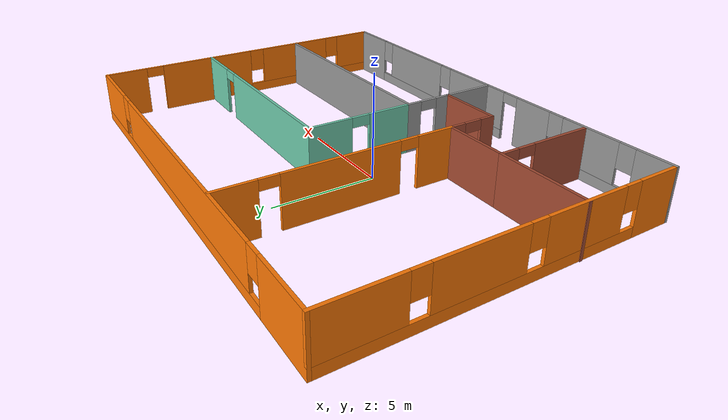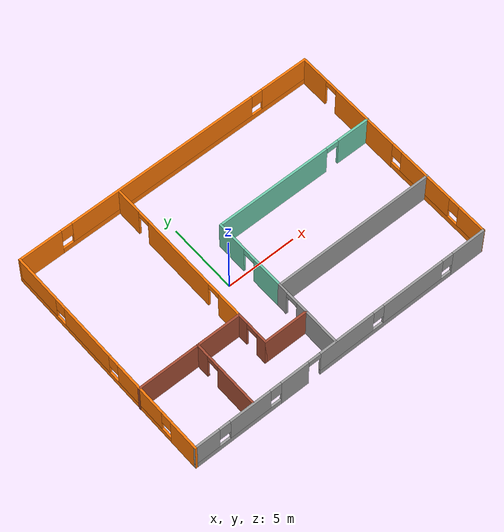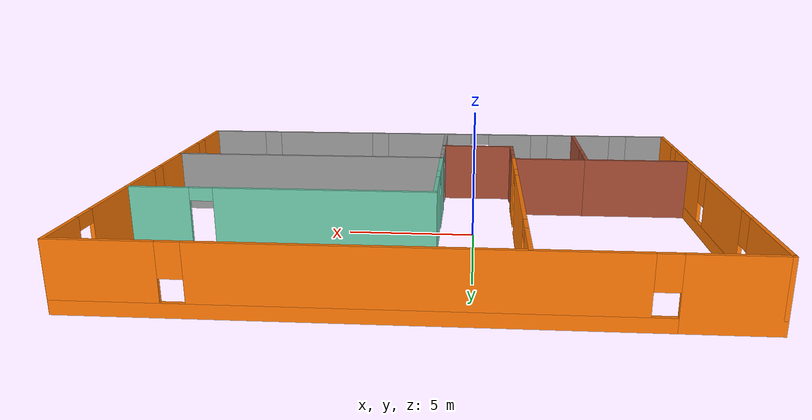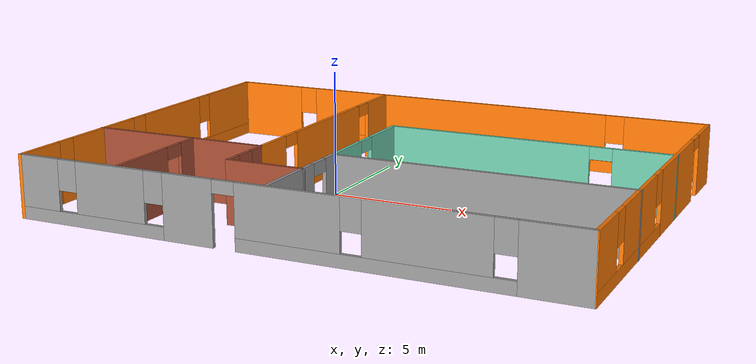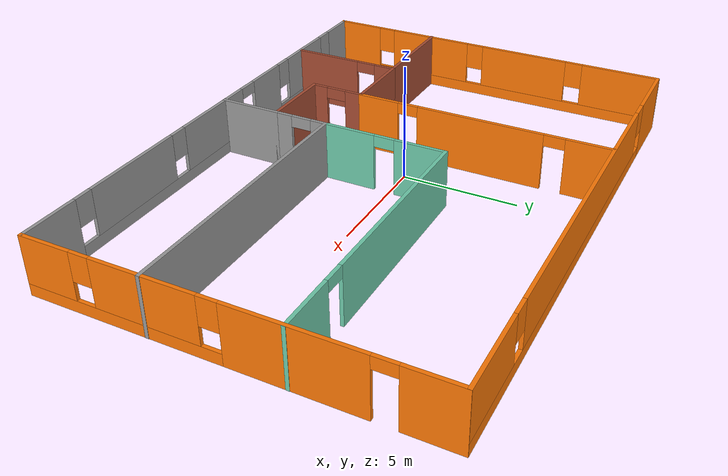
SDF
<?xml version='1.0'?>
<sdf version='1.6'>
  <model name='my_office'>
    <pose frame=''>1.93379 0.156321 0 0 -0 0</pose>
    <link name='Wall_10'>
      <collision name='Wall_10_Collision'>
        <geometry>
          <box>
            <size>4.5 0.15 2.5</size>
          </box>
        </geometry>
        <pose frame=''>0 0 1.25 0 -0 0</pose>
      </collision>
      <visual name='Wall_10_Visual'>
        <pose frame=''>0 0 1.25 0 -0 0</pose>
        <geometry>
          <box>
            <size>4.5 0.15 2.5</size>
          </box>
        </geometry>
        <material>
          <script>
            <uri>file://media/materials/scripts/gazebo.material</uri>
            <name>Gazebo/Bricks</name>
          </script>
          <ambient>1 1 1 1</ambient>
        </material>
        <meta>
          <layer>0</layer>
        </meta>
      </visual>
      <pose frame=''>-8.9 -3.09004 0 0 -0 0</pose>
    </link>
    <link name='Wall_11'>
      <pose frame=''>-6.725 -5.51504 0 0 0 -1.5708</pose>
      <visual name='Wall_11_Visual_0'>
        <pose frame=''>-1.99975 0 1.25 0 -0 0</pose>
        <geometry>
          <box>
            <size>1.00049 0.15 2.5</size>
          </box>
        </geometry>
        <material>
          <script>
            <uri>file://media/materials/scripts/gazebo.material</uri>
            <name>Gazebo/Bricks</name>
          </script>
          <ambient>1 1 1 1</ambient>
        </material>
        <meta>
          <layer>0</layer>
        </meta>
      </visual>
      <collision name='Wall_11_Collision_0'>
        <geometry>
          <box>
            <size>1.00049 0.15 2.5</size>
          </box>
        </geometry>
        <pose frame=''>-1.99975 0 1.25 0 -0 0</pose>
      </collision>
      <visual name='Wall_11_Visual_1'>
        <pose frame=''>0.950245 0 1.25 0 -0 0</pose>
        <geometry>
          <box>
            <size>3.09951 0.15 2.5</size>
          </box>
        </geometry>
        <material>
          <script>
            <uri>file://media/materials/scripts/gazebo.material</uri>
            <name>Gazebo/Bricks</name>
          </script>
          <ambient>1 1 1 1</ambient>
        </material>
        <meta>
          <layer>0</layer>
        </meta>
      </visual>
      <collision name='Wall_11_Collision_1'>
        <geometry>
          <box>
            <size>3.09951 0.15 2.5</size>
          </box>
        </geometry>
        <pose frame=''>0.950245 0 1.25 0 -0 0</pose>
      </collision>
      <visual name='Wall_11_Visual_2'>
        <pose frame=''>-1.04951 0 2.25 0 -0 0</pose>
        <geometry>
          <box>
            <size>0.9 0.15 0.5</size>
          </box>
        </geometry>
        <material>
          <script>
            <uri>file://media/materials/scripts/gazebo.material</uri>
            <name>Gazebo/Bricks</name>
          </script>
          <ambient>1 1 1 1</ambient>
        </material>
        <meta>
          <layer>0</layer>
        </meta>
      </visual>
      <collision name='Wall_11_Collision_2'>
        <geometry>
          <box>
            <size>0.9 0.15 0.5</size>
          </box>
        </geometry>
        <pose frame=''>-1.04951 0 2.25 0 -0 0</pose>
      </collision>
    </link>
    <link name='Wall_13'>
      <collision name='Wall_13_Collision'>
        <geometry>
          <box>
            <size>3.25 0.15 2.5</size>
          </box>
        </geometry>
        <pose frame=''>0 0 1.25 0 -0 0</pose>
      </collision>
      <visual name='Wall_13_Visual'>
        <pose frame=''>0 0 1.25 0 -0 0</pose>
        <geometry>
          <box>
            <size>3.25 0.15 2.5</size>
          </box>
        </geometry>
        <material>
          <script>
            <uri>file://media/materials/scripts/gazebo.material</uri>
            <name>Gazebo/Bricks</name>
          </script>
          <ambient>1 1 1 1</ambient>
        </material>
        <meta>
          <layer>0</layer>
        </meta>
      </visual>
      <pose frame=''>-5.175 -3.09004 0 0 -0 0</pose>
    </link>
    <link name='Wall_14'>
      <pose frame=''>-3.625 -4.26504 0 0 0 -1.5708</pose>
      <visual name='Wall_14_Visual_0'>
        <pose frame=''>-0.830666 0 1.25 0 -0 0</pose>
        <geometry>
          <box>
            <size>0.838667 0.15 2.5</size>
          </box>
        </geometry>
        <material>
          <script>
            <uri>file://media/materials/scripts/gazebo.material</uri>
            <name>Gazebo/Bricks</name>
          </script>
          <ambient>1 1 1 1</ambient>
        </material>
        <meta>
          <layer>0</layer>
        </meta>
      </visual>
      <collision name='Wall_14_Collision_0'>
        <geometry>
          <box>
            <size>0.838667 0.15 2.5</size>
          </box>
        </geometry>
        <pose frame=''>-0.830666 0 1.25 0 -0 0</pose>
      </collision>
      <visual name='Wall_14_Visual_1'>
        <pose frame=''>0.869334 0 1.25 0 -0 0</pose>
        <geometry>
          <box>
            <size>0.761333 0.15 2.5</size>
          </box>
        </geometry>
        <material>
          <script>
            <uri>file://media/materials/scripts/gazebo.material</uri>
            <name>Gazebo/Bricks</name>
          </script>
          <ambient>1 1 1 1</ambient>
        </material>
        <meta>
          <layer>0</layer>
        </meta>
      </visual>
      <collision name='Wall_14_Collision_1'>
        <geometry>
          <box>
            <size>0.761333 0.15 2.5</size>
          </box>
        </geometry>
        <pose frame=''>0.869334 0 1.25 0 -0 0</pose>
      </collision>
      <visual name='Wall_14_Visual_2'>
        <pose frame=''>0.038667 0 2.25 0 -0 0</pose>
        <geometry>
          <box>
            <size>0.9 0.15 0.5</size>
          </box>
        </geometry>
        <material>
          <script>
            <uri>file://media/materials/scripts/gazebo.material</uri>
            <name>Gazebo/Bricks</name>
          </script>
          <ambient>1 1 1 1</ambient>
        </material>
        <meta>
          <layer>0</layer>
        </meta>
      </visual>
      <collision name='Wall_14_Collision_2'>
        <geometry>
          <box>
            <size>0.9 0.15 0.5</size>
          </box>
        </geometry>
        <pose frame=''>0.038667 0 2.25 0 -0 0</pose>
      </collision>
    </link>
    <link name='Wall_15'>
      <collision name='Wall_15_Collision'>
        <geometry>
          <box>
            <size>3.25 0.15 2.5</size>
          </box>
        </geometry>
        <pose frame=''>0 0 1.25 0 -0 0</pose>
      </collision>
      <visual name='Wall_15_Visual'>
        <pose frame=''>0 0 1.25 0 -0 0</pose>
        <geometry>
          <box>
            <size>3.25 0.15 2.5</size>
          </box>
        </geometry>
        <material>
          <script>
            <uri>file://media/materials/scripts/gazebo.material</uri>
            <name>Gazebo/Bricks</name>
          </script>
          <ambient>1 1 1 1</ambient>
        </material>
        <meta>
          <layer>0</layer>
        </meta>
      </visual>
      <pose frame=''>-2.075 -5.44004 0 0 -0 0</pose>
    </link>
    <link name='Wall_16'>
      <collision name='Wall_16_Collision'>
        <geometry>
          <box>
            <size>2.75 0.15 2.5</size>
          </box>
        </geometry>
        <pose frame=''>0 0 1.25 0 -0 0</pose>
      </collision>
      <visual name='Wall_16_Visual'>
        <pose frame=''>0 0 1.25 0 -0 0</pose>
        <geometry>
          <box>
            <size>2.75 0.15 2.5</size>
          </box>
        </geometry>
        <material>
          <script>
            <uri>file://media/materials/scripts/gazebo.material</uri>
            <name>Gazebo/Grey</name>
          </script>
          <ambient>1 1 1 1</ambient>
        </material>
        <meta>
          <layer>0</layer>
        </meta>
      </visual>
      <pose frame=''>-0.525 -6.74004 0 0 0 -1.5708</pose>
    </link>
    <link name='Wall_20'>
      <pose frame=''>-0.525 -4.26504 0 0 -0 1.5708</pose>
      <visual name='Wall_20_Visual_0'>
        <pose frame=''>-0.828878 0 1.25 0 -0 0</pose>
        <geometry>
          <box>
            <size>0.842244 0.15 2.5</size>
          </box>
        </geometry>
        <material>
          <script>
            <uri>file://media/materials/scripts/gazebo.material</uri>
            <name>Gazebo/Grey</name>
          </script>
          <ambient>1 1 1 1</ambient>
        </material>
        <meta>
          <layer>0</layer>
        </meta>
      </visual>
      <collision name='Wall_20_Collision_0'>
        <geometry>
          <box>
            <size>0.842244 0.15 2.5</size>
          </box>
        </geometry>
        <pose frame=''>-0.828878 0 1.25 0 -0 0</pose>
      </collision>
      <visual name='Wall_20_Visual_1'>
        <pose frame=''>0.871122 0 1.25 0 -0 0</pose>
        <geometry>
          <box>
            <size>0.757756 0.15 2.5</size>
          </box>
        </geometry>
        <material>
          <script>
            <uri>file://media/materials/scripts/gazebo.material</uri>
            <name>Gazebo/Grey</name>
          </script>
          <ambient>1 1 1 1</ambient>
        </material>
        <meta>
          <layer>0</layer>
        </meta>
      </visual>
      <collision name='Wall_20_Collision_1'>
        <geometry>
          <box>
            <size>0.757756 0.15 2.5</size>
          </box>
        </geometry>
        <pose frame=''>0.871122 0 1.25 0 -0 0</pose>
      </collision>
      <visual name='Wall_20_Visual_2'>
        <pose frame=''>0.042244 0 2.25 0 -0 0</pose>
        <geometry>
          <box>
            <size>0.9 0.15 0.5</size>
          </box>
        </geometry>
        <material>
          <script>
            <uri>file://media/materials/scripts/gazebo.material</uri>
            <name>Gazebo/Grey</name>
          </script>
          <ambient>1 1 1 1</ambient>
        </material>
        <meta>
          <layer>0</layer>
        </meta>
      </visual>
      <collision name='Wall_20_Collision_2'>
        <geometry>
          <box>
            <size>0.9 0.15 0.5</size>
          </box>
        </geometry>
        <pose frame=''>0.042244 0 2.25 0 -0 0</pose>
      </collision>
    </link>
    <link name='Wall_21'>
      <collision name='Wall_21_Collision'>
        <geometry>
          <box>
            <size>11.75 0.15 2.5</size>
          </box>
        </geometry>
        <pose frame=''>0 0 1.25 0 -0 0</pose>
      </collision>
      <visual name='Wall_21_Visual'>
        <pose frame=''>0 0 1.25 0 -0 0</pose>
        <geometry>
          <box>
            <size>11.75 0.15 2.5</size>
          </box>
        </geometry>
        <material>
          <script>
            <uri>file://media/materials/scripts/gazebo.material</uri>
            <name>Gazebo/Grey</name>
          </script>
          <ambient>1 1 1 1</ambient>
        </material>
        <meta>
          <layer>0</layer>
        </meta>
      </visual>
      <pose frame=''>5.275 -3.09004 0 0 -0 0</pose>
    </link>
    <link name='Wall_23'>
      <pose frame=''>0.006559 8.05364 0 0 -0 0</pose>
      <visual name='Wall_23_Visual_0'>
        <pose frame=''>-9.56369 0 1.25 0 -0 0</pose>
        <geometry>
          <box>
            <size>3.12262 0.15 2.5</size>
          </box>
        </geometry>
        <material>
          <script>
            <uri>file://media/materials/scripts/gazebo.material</uri>
            <name>Gazebo/Grey</name>
          </script>
          <ambient>0.996078 0.47451 0.0196078 1</ambient>
        </material>
        <meta>
          <layer>0</layer>
        </meta>
      </visual>
      <collision name='Wall_23_Collision_0'>
        <geometry>
          <box>
            <size>3.12262 0.15 2.5</size>
          </box>
        </geometry>
        <pose frame=''>-9.56369 0 1.25 0 -0 0</pose>
      </collision>
      <visual name='Wall_23_Visual_1'>
        <pose frame=''>1.56131 0 0.25 0 -0 0</pose>
        <geometry>
          <box>
            <size>19.1274 0.15 0.5</size>
          </box>
        </geometry>
        <material>
          <script>
            <uri>file://media/materials/scripts/gazebo.material</uri>
            <name>Gazebo/Grey</name>
          </script>
          <ambient>0.996078 0.47451 0.0196078 1</ambient>
        </material>
        <meta>
          <layer>0</layer>
        </meta>
      </visual>
      <collision name='Wall_23_Collision_1'>
        <geometry>
          <box>
            <size>19.1274 0.15 0.5</size>
          </box>
        </geometry>
        <pose frame=''>1.56131 0 0.25 0 -0 0</pose>
      </collision>
      <visual name='Wall_23_Visual_2'>
        <pose frame=''>-0.219236 0 1.5 0 -0 0</pose>
        <geometry>
          <box>
            <size>13.9663 0.15 2</size>
          </box>
        </geometry>
        <material>
          <script>
            <uri>file://media/materials/scripts/gazebo.material</uri>
            <name>Gazebo/Grey</name>
          </script>
          <ambient>0.996078 0.47451 0.0196078 1</ambient>
        </material>
        <meta>
          <layer>0</layer>
        </meta>
      </visual>
      <collision name='Wall_23_Collision_2'>
        <geometry>
          <box>
            <size>13.9663 0.15 2</size>
          </box>
        </geometry>
        <pose frame=''>-0.219236 0 1.5 0 -0 0</pose>
      </collision>
      <visual name='Wall_23_Visual_3'>
        <pose frame=''>9.34445 0 1.5 0 -0 0</pose>
        <geometry>
          <box>
            <size>3.56109 0.15 2</size>
          </box>
        </geometry>
        <material>
          <script>
            <uri>file://media/materials/scripts/gazebo.material</uri>
            <name>Gazebo/Grey</name>
          </script>
          <ambient>0.996078 0.47451 0.0196078 1</ambient>
        </material>
        <meta>
          <layer>0</layer>
        </meta>
      </visual>
      <collision name='Wall_23_Collision_3'>
        <geometry>
          <box>
            <size>3.56109 0.15 2</size>
          </box>
        </geometry>
        <pose frame=''>9.34445 0 1.5 0 -0 0</pose>
      </collision>
      <visual name='Wall_23_Visual_4'>
        <pose frame=''>-7.60238 0 1.9 0 -0 0</pose>
        <geometry>
          <box>
            <size>0.8 0.15 1.2</size>
          </box>
        </geometry>
        <material>
          <script>
            <uri>file://media/materials/scripts/gazebo.material</uri>
            <name>Gazebo/Grey</name>
          </script>
          <ambient>0.996078 0.47451 0.0196078 1</ambient>
        </material>
        <meta>
          <layer>0</layer>
        </meta>
      </visual>
      <collision name='Wall_23_Collision_4'>
        <geometry>
          <box>
            <size>0.8 0.15 1.2</size>
          </box>
        </geometry>
        <pose frame=''>-7.60238 0 1.9 0 -0 0</pose>
      </collision>
      <visual name='Wall_23_Visual_5'>
        <pose frame=''>7.16391 0 1.9 0 -0 0</pose>
        <geometry>
          <box>
            <size>0.8 0.15 1.2</size>
          </box>
        </geometry>
        <material>
          <script>
            <uri>file://media/materials/scripts/gazebo.material</uri>
            <name>Gazebo/Grey</name>
          </script>
          <ambient>0.996078 0.47451 0.0196078 1</ambient>
        </material>
        <meta>
          <layer>0</layer>
        </meta>
      </visual>
      <collision name='Wall_23_Collision_5'>
        <geometry>
          <box>
            <size>0.8 0.15 1.2</size>
          </box>
        </geometry>
        <pose frame=''>7.16391 0 1.9 0 -0 0</pose>
      </collision>
    </link>
    <link name='Wall_25'>
      <pose frame=''>-3.625 2.45996 0 0 -0 1.5708</pose>
      <visual name='Wall_25_Visual_0'>
        <pose frame=''>-4.67974 0 1.25 0 -0 0</pose>
        <geometry>
          <box>
            <size>1.89051 0.15 2.5</size>
          </box>
        </geometry>
        <material>
          <script>
            <uri>file://media/materials/scripts/gazebo.material</uri>
            <name>Gazebo/Grey</name>
          </script>
          <ambient>0.996078 0.47451 0.0196078 1</ambient>
        </material>
        <meta>
          <layer>0</layer>
        </meta>
      </visual>
      <collision name='Wall_25_Collision_0'>
        <geometry>
          <box>
            <size>1.89051 0.15 2.5</size>
          </box>
        </geometry>
        <pose frame=''>-4.67974 0 1.25 0 -0 0</pose>
      </collision>
      <visual name='Wall_25_Visual_1'>
        <pose frame=''>-0.048041 0 1.25 0 -0 0</pose>
        <geometry>
          <box>
            <size>5.57289 0.15 2.5</size>
          </box>
        </geometry>
        <material>
          <script>
            <uri>file://media/materials/scripts/gazebo.material</uri>
            <name>Gazebo/Grey</name>
          </script>
          <ambient>0.996078 0.47451 0.0196078 1</ambient>
        </material>
        <meta>
          <layer>0</layer>
        </meta>
      </visual>
      <collision name='Wall_25_Collision_1'>
        <geometry>
          <box>
            <size>5.57289 0.15 2.5</size>
          </box>
        </geometry>
        <pose frame=''>-0.048041 0 1.25 0 -0 0</pose>
      </collision>
      <visual name='Wall_25_Visual_2'>
        <pose frame=''>4.6317 0 1.25 0 -0 0</pose>
        <geometry>
          <box>
            <size>1.9866 0.15 2.5</size>
          </box>
        </geometry>
        <material>
          <script>
            <uri>file://media/materials/scripts/gazebo.material</uri>
            <name>Gazebo/Grey</name>
          </script>
          <ambient>0.996078 0.47451 0.0196078 1</ambient>
        </material>
        <meta>
          <layer>0</layer>
        </meta>
      </visual>
      <collision name='Wall_25_Collision_2'>
        <geometry>
          <box>
            <size>1.9866 0.15 2.5</size>
          </box>
        </geometry>
        <pose frame=''>4.6317 0 1.25 0 -0 0</pose>
      </collision>
      <visual name='Wall_25_Visual_3'>
        <pose frame=''>-3.28449 0 2.25 0 -0 0</pose>
        <geometry>
          <box>
            <size>0.9 0.15 0.5</size>
          </box>
        </geometry>
        <material>
          <script>
            <uri>file://media/materials/scripts/gazebo.material</uri>
            <name>Gazebo/Grey</name>
          </script>
          <ambient>0.996078 0.47451 0.0196078 1</ambient>
        </material>
        <meta>
          <layer>0</layer>
        </meta>
      </visual>
      <collision name='Wall_25_Collision_3'>
        <geometry>
          <box>
            <size>0.9 0.15 0.5</size>
          </box>
        </geometry>
        <pose frame=''>-3.28449 0 2.25 0 -0 0</pose>
      </collision>
      <visual name='Wall_25_Visual_4'>
        <pose frame=''>3.1884 0 2.25 0 -0 0</pose>
        <geometry>
          <box>
            <size>0.9 0.15 0.5</size>
          </box>
        </geometry>
        <material>
          <script>
            <uri>file://media/materials/scripts/gazebo.material</uri>
            <name>Gazebo/Grey</name>
          </script>
          <ambient>0.996078 0.47451 0.0196078 1</ambient>
        </material>
        <meta>
          <layer>0</layer>
        </meta>
      </visual>
      <collision name='Wall_25_Collision_4'>
        <geometry>
          <box>
            <size>0.9 0.15 0.5</size>
          </box>
        </geometry>
        <pose frame=''>3.1884 0 2.25 0 -0 0</pose>
      </collision>
    </link>
    <link name='Wall_27'>
      <pose frame=''>-0.525 -0.415042 0 0 -0 1.5708</pose>
      <visual name='Wall_27_Visual_0'>
        <pose frame=''>-1.58224 0 1.25 0 -0 0</pose>
        <geometry>
          <box>
            <size>2.33552 0.15 2.5</size>
          </box>
        </geometry>
        <material>
          <script>
            <uri>file://media/materials/scripts/gazebo.material</uri>
            <name>Gazebo/Grey</name>
          </script>
          <ambient>0.435294 0.796078 0.67451 1</ambient>
        </material>
        <meta>
          <layer>0</layer>
        </meta>
      </visual>
      <collision name='Wall_27_Collision_0'>
        <geometry>
          <box>
            <size>2.33552 0.15 2.5</size>
          </box>
        </geometry>
        <pose frame=''>-1.58224 0 1.25 0 -0 0</pose>
      </collision>
      <visual name='Wall_27_Visual_1'>
        <pose frame=''>1.61776 0 1.25 0 -0 0</pose>
        <geometry>
          <box>
            <size>2.26448 0.15 2.5</size>
          </box>
        </geometry>
        <material>
          <script>
            <uri>file://media/materials/scripts/gazebo.material</uri>
            <name>Gazebo/Grey</name>
          </script>
          <ambient>0.435294 0.796078 0.67451 1</ambient>
        </material>
        <meta>
          <layer>0</layer>
        </meta>
      </visual>
      <collision name='Wall_27_Collision_1'>
        <geometry>
          <box>
            <size>2.26448 0.15 2.5</size>
          </box>
        </geometry>
        <pose frame=''>1.61776 0 1.25 0 -0 0</pose>
      </collision>
      <visual name='Wall_27_Visual_2'>
        <pose frame=''>0.035524 0 2.25 0 -0 0</pose>
        <geometry>
          <box>
            <size>0.9 0.15 0.5</size>
          </box>
        </geometry>
        <material>
          <script>
            <uri>file://media/materials/scripts/gazebo.material</uri>
            <name>Gazebo/Grey</name>
          </script>
          <ambient>0.435294 0.796078 0.67451 1</ambient>
        </material>
        <meta>
          <layer>0</layer>
        </meta>
      </visual>
      <collision name='Wall_27_Collision_2'>
        <geometry>
          <box>
            <size>0.9 0.15 0.5</size>
          </box>
        </geometry>
        <pose frame=''>0.035524 0 2.25 0 -0 0</pose>
      </collision>
    </link>
    <link name='Wall_28'>
      <pose frame=''>5.275 2.25996 0 0 -0 0</pose>
      <visual name='Wall_28_Visual_0'>
        <pose frame=''>-1.68884 0 1.25 0 -0 0</pose>
        <geometry>
          <box>
            <size>8.37231 0.15 2.5</size>
          </box>
        </geometry>
        <material>
          <script>
            <uri>file://media/materials/scripts/gazebo.material</uri>
            <name>Gazebo/Grey</name>
          </script>
          <ambient>0.435294 0.796078 0.67451 1</ambient>
        </material>
        <meta>
          <layer>0</layer>
        </meta>
      </visual>
      <collision name='Wall_28_Collision_0'>
        <geometry>
          <box>
            <size>8.37231 0.15 2.5</size>
          </box>
        </geometry>
        <pose frame=''>-1.68884 0 1.25 0 -0 0</pose>
      </collision>
      <visual name='Wall_28_Visual_1'>
        <pose frame=''>4.63615 0 1.25 0 -0 0</pose>
        <geometry>
          <box>
            <size>2.47769 0.15 2.5</size>
          </box>
        </geometry>
        <material>
          <script>
            <uri>file://media/materials/scripts/gazebo.material</uri>
            <name>Gazebo/Grey</name>
          </script>
          <ambient>0.435294 0.796078 0.67451 1</ambient>
        </material>
        <meta>
          <layer>0</layer>
        </meta>
      </visual>
      <collision name='Wall_28_Collision_1'>
        <geometry>
          <box>
            <size>2.47769 0.15 2.5</size>
          </box>
        </geometry>
        <pose frame=''>4.63615 0 1.25 0 -0 0</pose>
      </collision>
      <visual name='Wall_28_Visual_2'>
        <pose frame=''>2.94731 0 2.25 0 -0 0</pose>
        <geometry>
          <box>
            <size>0.9 0.15 0.5</size>
          </box>
        </geometry>
        <material>
          <script>
            <uri>file://media/materials/scripts/gazebo.material</uri>
            <name>Gazebo/Grey</name>
          </script>
          <ambient>0.435294 0.796078 0.67451 1</ambient>
        </material>
        <meta>
          <layer>0</layer>
        </meta>
      </visual>
      <collision name='Wall_28_Collision_2'>
        <geometry>
          <box>
            <size>0.9 0.15 0.5</size>
          </box>
        </geometry>
        <pose frame=''>2.94731 0 2.25 0 -0 0</pose>
      </collision>
    </link>
    <link name='Wall_3'>
      <pose frame=''>-11.0434 0.003645 0 0 -0 1.5708</pose>
      <visual name='Wall_3_Visual_0'>
        <pose frame=''>-7.02301 0 1.25 0 -0 0</pose>
        <geometry>
          <box>
            <size>2.20398 0.15 2.5</size>
          </box>
        </geometry>
        <material>
          <script>
            <uri>file://media/materials/scripts/gazebo.material</uri>
            <name>Gazebo/Grey</name>
          </script>
          <ambient>0.996078 0.47451 0.0196078 1</ambient>
        </material>
        <meta>
          <layer>0</layer>
        </meta>
      </visual>
      <collision name='Wall_3_Collision_0'>
        <geometry>
          <box>
            <size>2.20398 0.15 2.5</size>
          </box>
        </geometry>
        <pose frame=''>-7.02301 0 1.25 0 -0 0</pose>
      </collision>
      <visual name='Wall_3_Visual_1'>
        <pose frame=''>1.10199 0 0.25 0 -0 0</pose>
        <geometry>
          <box>
            <size>14.046 0.15 0.5</size>
          </box>
        </geometry>
        <material>
          <script>
            <uri>file://media/materials/scripts/gazebo.material</uri>
            <name>Gazebo/Grey</name>
          </script>
          <ambient>0.996078 0.47451 0.0196078 1</ambient>
        </material>
        <meta>
          <layer>0</layer>
        </meta>
      </visual>
      <collision name='Wall_3_Collision_1'>
        <geometry>
          <box>
            <size>14.046 0.15 0.5</size>
          </box>
        </geometry>
        <pose frame=''>1.10199 0 0.25 0 -0 0</pose>
      </collision>
      <visual name='Wall_3_Visual_2'>
        <pose frame=''>-3.13414 0 1.5 0 -0 0</pose>
        <geometry>
          <box>
            <size>3.97376 0.15 2</size>
          </box>
        </geometry>
        <material>
          <script>
            <uri>file://media/materials/scripts/gazebo.material</uri>
            <name>Gazebo/Grey</name>
          </script>
          <ambient>0.996078 0.47451 0.0196078 1</ambient>
        </material>
        <meta>
          <layer>0</layer>
        </meta>
      </visual>
      <collision name='Wall_3_Collision_2'>
        <geometry>
          <box>
            <size>3.97376 0.15 2</size>
          </box>
        </geometry>
        <pose frame=''>-3.13414 0 1.5 0 -0 0</pose>
      </collision>
      <visual name='Wall_3_Visual_3'>
        <pose frame=''>1.72053 0 1.5 0 -0 0</pose>
        <geometry>
          <box>
            <size>4.13558 0.15 2</size>
          </box>
        </geometry>
        <material>
          <script>
            <uri>file://media/materials/scripts/gazebo.material</uri>
            <name>Gazebo/Grey</name>
          </script>
          <ambient>0.996078 0.47451 0.0196078 1</ambient>
        </material>
        <meta>
          <layer>0</layer>
        </meta>
      </visual>
      <collision name='Wall_3_Collision_3'>
        <geometry>
          <box>
            <size>4.13558 0.15 2</size>
          </box>
        </geometry>
        <pose frame=''>1.72053 0 1.5 0 -0 0</pose>
      </collision>
      <visual name='Wall_3_Visual_4'>
        <pose frame=''>6.35666 0 1.5 0 -0 0</pose>
        <geometry>
          <box>
            <size>3.53668 0.15 2</size>
          </box>
        </geometry>
        <material>
          <script>
            <uri>file://media/materials/scripts/gazebo.material</uri>
            <name>Gazebo/Grey</name>
          </script>
          <ambient>0.996078 0.47451 0.0196078 1</ambient>
        </material>
        <meta>
          <layer>0</layer>
        </meta>
      </visual>
      <collision name='Wall_3_Collision_4'>
        <geometry>
          <box>
            <size>3.53668 0.15 2</size>
          </box>
        </geometry>
        <pose frame=''>6.35666 0 1.5 0 -0 0</pose>
      </collision>
      <visual name='Wall_3_Visual_5'>
        <pose frame=''>-5.52102 0 1.9 0 -0 0</pose>
        <geometry>
          <box>
            <size>0.8 0.15 1.2</size>
          </box>
        </geometry>
        <material>
          <script>
            <uri>file://media/materials/scripts/gazebo.material</uri>
            <name>Gazebo/Grey</name>
          </script>
          <ambient>0.996078 0.47451 0.0196078 1</ambient>
        </material>
        <meta>
          <layer>0</layer>
        </meta>
      </visual>
      <collision name='Wall_3_Collision_5'>
        <geometry>
          <box>
            <size>0.8 0.15 1.2</size>
          </box>
        </geometry>
        <pose frame=''>-5.52102 0 1.9 0 -0 0</pose>
      </collision>
      <visual name='Wall_3_Visual_6'>
        <pose frame=''>-0.747264 0 1.9 0 -0 0</pose>
        <geometry>
          <box>
            <size>0.8 0.15 1.2</size>
          </box>
        </geometry>
        <material>
          <script>
            <uri>file://media/materials/scripts/gazebo.material</uri>
            <name>Gazebo/Grey</name>
          </script>
          <ambient>0.996078 0.47451 0.0196078 1</ambient>
        </material>
        <meta>
          <layer>0</layer>
        </meta>
      </visual>
      <collision name='Wall_3_Collision_6'>
        <geometry>
          <box>
            <size>0.8 0.15 1.2</size>
          </box>
        </geometry>
        <pose frame=''>-0.747264 0 1.9 0 -0 0</pose>
      </collision>
      <visual name='Wall_3_Visual_7'>
        <pose frame=''>4.18832 0 1.9 0 -0 0</pose>
        <geometry>
          <box>
            <size>0.8 0.15 1.2</size>
          </box>
        </geometry>
        <material>
          <script>
            <uri>file://media/materials/scripts/gazebo.material</uri>
            <name>Gazebo/Grey</name>
          </script>
          <ambient>0.996078 0.47451 0.0196078 1</ambient>
        </material>
        <meta>
          <layer>0</layer>
        </meta>
      </visual>
      <collision name='Wall_3_Collision_7'>
        <geometry>
          <box>
            <size>0.8 0.15 1.2</size>
          </box>
        </geometry>
        <pose frame=''>4.18832 0 1.9 0 -0 0</pose>
      </collision>
    </link>
    <link name='Wall_7'>
      <pose frame=''>11.0638 -0.003621 0 0 0 -1.5708</pose>
      <visual name='Wall_7_Visual_0'>
        <pose frame=''>-7.05281 0 1.25 0 -0 0</pose>
        <geometry>
          <box>
            <size>2.14438 0.15 2.5</size>
          </box>
        </geometry>
        <material>
          <script>
            <uri>file://media/materials/scripts/gazebo.material</uri>
            <name>Gazebo/Grey</name>
          </script>
          <ambient>0.996078 0.47451 0.0196078 1</ambient>
        </material>
        <meta>
          <layer>0</layer>
        </meta>
      </visual>
      <collision name='Wall_7_Collision_0'>
        <geometry>
          <box>
            <size>2.14438 0.15 2.5</size>
          </box>
        </geometry>
        <pose frame=''>-7.05281 0 1.25 0 -0 0</pose>
      </collision>
      <visual name='Wall_7_Visual_1'>
        <pose frame=''>-2.49168 0 1.25 0 -0 0</pose>
        <geometry>
          <box>
            <size>5.17788 0.15 2.5</size>
          </box>
        </geometry>
        <material>
          <script>
            <uri>file://media/materials/scripts/gazebo.material</uri>
            <name>Gazebo/Grey</name>
          </script>
          <ambient>0.996078 0.47451 0.0196078 1</ambient>
        </material>
        <meta>
          <layer>0</layer>
        </meta>
      </visual>
      <collision name='Wall_7_Collision_1'>
        <geometry>
          <box>
            <size>5.17788 0.15 2.5</size>
          </box>
        </geometry>
        <pose frame=''>-2.49168 0 1.25 0 -0 0</pose>
      </collision>
      <visual name='Wall_7_Visual_2'>
        <pose frame=''>4.11113 0 0.25 0 -0 0</pose>
        <geometry>
          <box>
            <size>8.02774 0.15 0.5</size>
          </box>
        </geometry>
        <material>
          <script>
            <uri>file://media/materials/scripts/gazebo.material</uri>
            <name>Gazebo/Grey</name>
          </script>
          <ambient>0.996078 0.47451 0.0196078 1</ambient>
        </material>
        <meta>
          <layer>0</layer>
        </meta>
      </visual>
      <collision name='Wall_7_Collision_2'>
        <geometry>
          <box>
            <size>8.02774 0.15 0.5</size>
          </box>
        </geometry>
        <pose frame=''>4.11113 0 0.25 0 -0 0</pose>
      </collision>
      <visual name='Wall_7_Visual_3'>
        <pose frame=''>3.02574 0 1.5 0 -0 0</pose>
        <geometry>
          <box>
            <size>4.25695 0.15 2</size>
          </box>
        </geometry>
        <material>
          <script>
            <uri>file://media/materials/scripts/gazebo.material</uri>
            <name>Gazebo/Grey</name>
          </script>
          <ambient>0.996078 0.47451 0.0196078 1</ambient>
        </material>
        <meta>
          <layer>0</layer>
        </meta>
      </visual>
      <collision name='Wall_7_Collision_3'>
        <geometry>
          <box>
            <size>4.25695 0.15 2</size>
          </box>
        </geometry>
        <pose frame=''>3.02574 0 1.5 0 -0 0</pose>
      </collision>
      <visual name='Wall_7_Visual_4'>
        <pose frame=''>7.03961 0 1.5 0 -0 0</pose>
        <geometry>
          <box>
            <size>2.17079 0.15 2</size>
          </box>
        </geometry>
        <material>
          <script>
            <uri>file://media/materials/scripts/gazebo.material</uri>
            <name>Gazebo/Grey</name>
          </script>
          <ambient>0.996078 0.47451 0.0196078 1</ambient>
        </material>
        <meta>
          <layer>0</layer>
        </meta>
      </visual>
      <collision name='Wall_7_Collision_4'>
        <geometry>
          <box>
            <size>2.17079 0.15 2</size>
          </box>
        </geometry>
        <pose frame=''>7.03961 0 1.5 0 -0 0</pose>
      </collision>
      <visual name='Wall_7_Visual_5'>
        <pose frame=''>0.497264 0 1.9 0 -0 0</pose>
        <geometry>
          <box>
            <size>0.8 0.15 1.2</size>
          </box>
        </geometry>
        <material>
          <script>
            <uri>file://media/materials/scripts/gazebo.material</uri>
            <name>Gazebo/Grey</name>
          </script>
          <ambient>0.996078 0.47451 0.0196078 1</ambient>
        </material>
        <meta>
          <layer>0</layer>
        </meta>
      </visual>
      <collision name='Wall_7_Collision_5'>
        <geometry>
          <box>
            <size>0.8 0.15 1.2</size>
          </box>
        </geometry>
        <pose frame=''>0.497264 0 1.9 0 -0 0</pose>
      </collision>
      <visual name='Wall_7_Visual_6'>
        <pose frame=''>5.55421 0 1.9 0 -0 0</pose>
        <geometry>
          <box>
            <size>0.8 0.15 1.2</size>
          </box>
        </geometry>
        <material>
          <script>
            <uri>file://media/materials/scripts/gazebo.material</uri>
            <name>Gazebo/Grey</name>
          </script>
          <ambient>0.996078 0.47451 0.0196078 1</ambient>
        </material>
        <meta>
          <layer>0</layer>
        </meta>
      </visual>
      <collision name='Wall_7_Collision_6'>
        <geometry>
          <box>
            <size>0.8 0.15 1.2</size>
          </box>
        </geometry>
        <pose frame=''>5.55421 0 1.9 0 -0 0</pose>
      </collision>
      <visual name='Wall_7_Visual_7'>
        <pose frame=''>-5.53062 0 2.25 0 -0 0</pose>
        <geometry>
          <box>
            <size>0.9 0.15 0.5</size>
          </box>
        </geometry>
        <material>
          <script>
            <uri>file://media/materials/scripts/gazebo.material</uri>
            <name>Gazebo/Grey</name>
          </script>
          <ambient>0.996078 0.47451 0.0196078 1</ambient>
        </material>
        <meta>
          <layer>0</layer>
        </meta>
      </visual>
      <collision name='Wall_7_Collision_7'>
        <geometry>
          <box>
            <size>0.9 0.15 0.5</size>
          </box>
        </geometry>
        <pose frame=''>-5.53062 0 2.25 0 -0 0</pose>
      </collision>
    </link>
    <link name='Wall_8'>
      <pose frame=''>-0.010036 -8.04999 0 0 -0 3.14126</pose>
      <visual name='Wall_8_Visual_0'>
        <pose frame=''>-9.85014 0 1.25 0 -0 0</pose>
        <geometry>
          <box>
            <size>2.51652 0.15 2.5</size>
          </box>
        </geometry>
        <material>
          <script>
            <uri>file://media/materials/scripts/gazebo.material</uri>
            <name>Gazebo/Grey</name>
          </script>
          <ambient>1 1 1 1</ambient>
        </material>
        <meta>
          <layer>0</layer>
        </meta>
      </visual>
      <collision name='Wall_8_Collision_0'>
        <geometry>
          <box>
            <size>2.51652 0.15 2.5</size>
          </box>
        </geometry>
        <pose frame=''>-9.85014 0 1.25 0 -0 0</pose>
      </collision>
      <visual name='Wall_8_Visual_1'>
        <pose frame=''>3.64618 0 1.25 0 -0 0</pose>
        <geometry>
          <box>
            <size>2.06273 0.15 2.5</size>
          </box>
        </geometry>
        <material>
          <script>
            <uri>file://media/materials/scripts/gazebo.material</uri>
            <name>Gazebo/Grey</name>
          </script>
          <ambient>1 1 1 1</ambient>
        </material>
        <meta>
          <layer>0</layer>
        </meta>
      </visual>
      <collision name='Wall_8_Collision_1'>
        <geometry>
          <box>
            <size>2.06273 0.15 2.5</size>
          </box>
        </geometry>
        <pose frame=''>3.64618 0 1.25 0 -0 0</pose>
      </collision>
      <visual name='Wall_8_Visual_2'>
        <pose frame=''>-3.43853 0 0.25 0 -0 0</pose>
        <geometry>
          <box>
            <size>10.3067 0.15 0.5</size>
          </box>
        </geometry>
        <material>
          <script>
            <uri>file://media/materials/scripts/gazebo.material</uri>
            <name>Gazebo/Grey</name>
          </script>
          <ambient>1 1 1 1</ambient>
        </material>
        <meta>
          <layer>0</layer>
        </meta>
      </visual>
      <collision name='Wall_8_Collision_2'>
        <geometry>
          <box>
            <size>10.3067 0.15 0.5</size>
          </box>
        </geometry>
        <pose frame=''>-3.43853 0 0.25 0 -0 0</pose>
      </collision>
      <visual name='Wall_8_Visual_3'>
        <pose frame=''>7.89298 0 0.25 0 -0 0</pose>
        <geometry>
          <box>
            <size>6.43086 0.15 0.5</size>
          </box>
        </geometry>
        <material>
          <script>
            <uri>file://media/materials/scripts/gazebo.material</uri>
            <name>Gazebo/Grey</name>
          </script>
          <ambient>1 1 1 1</ambient>
        </material>
        <meta>
          <layer>0</layer>
        </meta>
      </visual>
      <collision name='Wall_8_Collision_3'>
        <geometry>
          <box>
            <size>6.43086 0.15 0.5</size>
          </box>
        </geometry>
        <pose frame=''>7.89298 0 0.25 0 -0 0</pose>
      </collision>
      <visual name='Wall_8_Visual_4'>
        <pose frame=''>-5.48134 0 1.5 0 -0 0</pose>
        <geometry>
          <box>
            <size>4.62109 0.15 2</size>
          </box>
        </geometry>
        <material>
          <script>
            <uri>file://media/materials/scripts/gazebo.material</uri>
            <name>Gazebo/Grey</name>
          </script>
          <ambient>1 1 1 1</ambient>
        </material>
        <meta>
          <layer>0</layer>
        </meta>
      </visual>
      <collision name='Wall_8_Collision_4'>
        <geometry>
          <box>
            <size>4.62109 0.15 2</size>
          </box>
        </geometry>
        <pose frame=''>-5.48134 0 1.5 0 -0 0</pose>
      </collision>
      <visual name='Wall_8_Visual_5'>
        <pose frame=''>-0.327992 0 1.5 0 -0 0</pose>
        <geometry>
          <box>
            <size>4.08561 0.15 2</size>
          </box>
        </geometry>
        <material>
          <script>
            <uri>file://media/materials/scripts/gazebo.material</uri>
            <name>Gazebo/Grey</name>
          </script>
          <ambient>1 1 1 1</ambient>
        </material>
        <meta>
          <layer>0</layer>
        </meta>
      </visual>
      <collision name='Wall_8_Collision_5'>
        <geometry>
          <box>
            <size>4.08561 0.15 2</size>
          </box>
        </geometry>
        <pose frame=''>-0.327992 0 1.5 0 -0 0</pose>
      </collision>
      <visual name='Wall_8_Visual_6'>
        <pose frame=''>-0.327992 0 1.5 0 -0 0</pose>
        <geometry>
          <box>
            <size>4.08561 0.15 2</size>
          </box>
        </geometry>
        <material>
          <script>
            <uri>file://media/materials/scripts/gazebo.material</uri>
            <name>Gazebo/Grey</name>
          </script>
          <ambient>1 1 1 1</ambient>
        </material>
        <meta>
          <layer>0</layer>
        </meta>
      </visual>
      <collision name='Wall_8_Collision_6'>
        <geometry>
          <box>
            <size>4.08561 0.15 2</size>
          </box>
        </geometry>
        <pose frame=''>-0.327992 0 1.5 0 -0 0</pose>
      </collision>
      <visual name='Wall_8_Visual_7'>
        <pose frame=''>6.97895 0 1.5 0 -0 0</pose>
        <geometry>
          <box>
            <size>3.00281 0.15 2</size>
          </box>
        </geometry>
        <material>
          <script>
            <uri>file://media/materials/scripts/gazebo.material</uri>
            <name>Gazebo/Grey</name>
          </script>
          <ambient>1 1 1 1</ambient>
        </material>
        <meta>
          <layer>0</layer>
        </meta>
      </visual>
      <collision name='Wall_8_Collision_7'>
        <geometry>
          <box>
            <size>3.00281 0.15 2</size>
          </box>
        </geometry>
        <pose frame=''>6.97895 0 1.5 0 -0 0</pose>
      </collision>
      <visual name='Wall_8_Visual_8'>
        <pose frame=''>10.1944 0 1.5 0 -0 0</pose>
        <geometry>
          <box>
            <size>1.82805 0.15 2</size>
          </box>
        </geometry>
        <material>
          <script>
            <uri>file://media/materials/scripts/gazebo.material</uri>
            <name>Gazebo/Grey</name>
          </script>
          <ambient>1 1 1 1</ambient>
        </material>
        <meta>
          <layer>0</layer>
        </meta>
      </visual>
      <collision name='Wall_8_Collision_8'>
        <geometry>
          <box>
            <size>1.82805 0.15 2</size>
          </box>
        </geometry>
        <pose frame=''>10.1944 0 1.5 0 -0 0</pose>
      </collision>
      <visual name='Wall_8_Visual_9'>
        <pose frame=''>-8.19188 0 1.9 0 -0 0</pose>
        <geometry>
          <box>
            <size>0.8 0.15 1.2</size>
          </box>
        </geometry>
        <material>
          <script>
            <uri>file://media/materials/scripts/gazebo.material</uri>
            <name>Gazebo/Grey</name>
          </script>
          <ambient>1 1 1 1</ambient>
        </material>
        <meta>
          <layer>0</layer>
        </meta>
      </visual>
      <collision name='Wall_8_Collision_9'>
        <geometry>
          <box>
            <size>0.8 0.15 1.2</size>
          </box>
        </geometry>
        <pose frame=''>-8.19188 0 1.9 0 -0 0</pose>
      </collision>
      <visual name='Wall_8_Visual_10'>
        <pose frame=''>5.07755 0 1.9 0 -0 0</pose>
        <geometry>
          <box>
            <size>0.8 0.15 1.2</size>
          </box>
        </geometry>
        <material>
          <script>
            <uri>file://media/materials/scripts/gazebo.material</uri>
            <name>Gazebo/Grey</name>
          </script>
          <ambient>1 1 1 1</ambient>
        </material>
        <meta>
          <layer>0</layer>
        </meta>
      </visual>
      <collision name='Wall_8_Collision_10'>
        <geometry>
          <box>
            <size>0.8 0.15 1.2</size>
          </box>
        </geometry>
        <pose frame=''>5.07755 0 1.9 0 -0 0</pose>
      </collision>
      <visual name='Wall_8_Visual_11'>
        <pose frame=''>-2.7708 0 1.9 0 -0 0</pose>
        <geometry>
          <box>
            <size>0.8 0.15 1.2</size>
          </box>
        </geometry>
        <material>
          <script>
            <uri>file://media/materials/scripts/gazebo.material</uri>
            <name>Gazebo/Grey</name>
          </script>
          <ambient>1 1 1 1</ambient>
        </material>
        <meta>
          <layer>0</layer>
        </meta>
      </visual>
      <collision name='Wall_8_Collision_11'>
        <geometry>
          <box>
            <size>0.8 0.15 1.2</size>
          </box>
        </geometry>
        <pose frame=''>-2.7708 0 1.9 0 -0 0</pose>
      </collision>
      <visual name='Wall_8_Visual_12'>
        <pose frame=''>8.88036 0 1.9 0 -0 0</pose>
        <geometry>
          <box>
            <size>0.8 0.15 1.2</size>
          </box>
        </geometry>
        <material>
          <script>
            <uri>file://media/materials/scripts/gazebo.material</uri>
            <name>Gazebo/Grey</name>
          </script>
          <ambient>1 1 1 1</ambient>
        </material>
        <meta>
          <layer>0</layer>
        </meta>
      </visual>
      <collision name='Wall_8_Collision_12'>
        <geometry>
          <box>
            <size>0.8 0.15 1.2</size>
          </box>
        </geometry>
        <pose frame=''>8.88036 0 1.9 0 -0 0</pose>
      </collision>
      <visual name='Wall_8_Visual_13'>
        <pose frame=''>2.16481 0 2.25 0 -0 0</pose>
        <geometry>
          <box>
            <size>0.9 0.15 0.5</size>
          </box>
        </geometry>
        <material>
          <script>
            <uri>file://media/materials/scripts/gazebo.material</uri>
            <name>Gazebo/Grey</name>
          </script>
          <ambient>1 1 1 1</ambient>
        </material>
        <meta>
          <layer>0</layer>
        </meta>
      </visual>
      <collision name='Wall_8_Collision_13'>
        <geometry>
          <box>
            <size>0.9 0.15 0.5</size>
          </box>
        </geometry>
        <pose frame=''>2.16481 0 2.25 0 -0 0</pose>
      </collision>
      <visual name='Wall_8_Visual_14'>
        <pose frame=''>2.16481 0 2.25 0 -0 0</pose>
        <geometry>
          <box>
            <size>0.9 0.15 0.5</size>
          </box>
        </geometry>
        <material>
          <script>
            <uri>file://media/materials/scripts/gazebo.material</uri>
            <name>Gazebo/Grey</name>
          </script>
          <ambient>1 1 1 1</ambient>
        </material>
        <meta>
          <layer>0</layer>
        </meta>
      </visual>
      <collision name='Wall_8_Collision_14'>
        <geometry>
          <box>
            <size>0.9 0.15 0.5</size>
          </box>
        </geometry>
        <pose frame=''>2.16481 0 2.25 0 -0 0</pose>
      </collision>
    </link>
    <static>1</static>
  </model>
</sdf>
